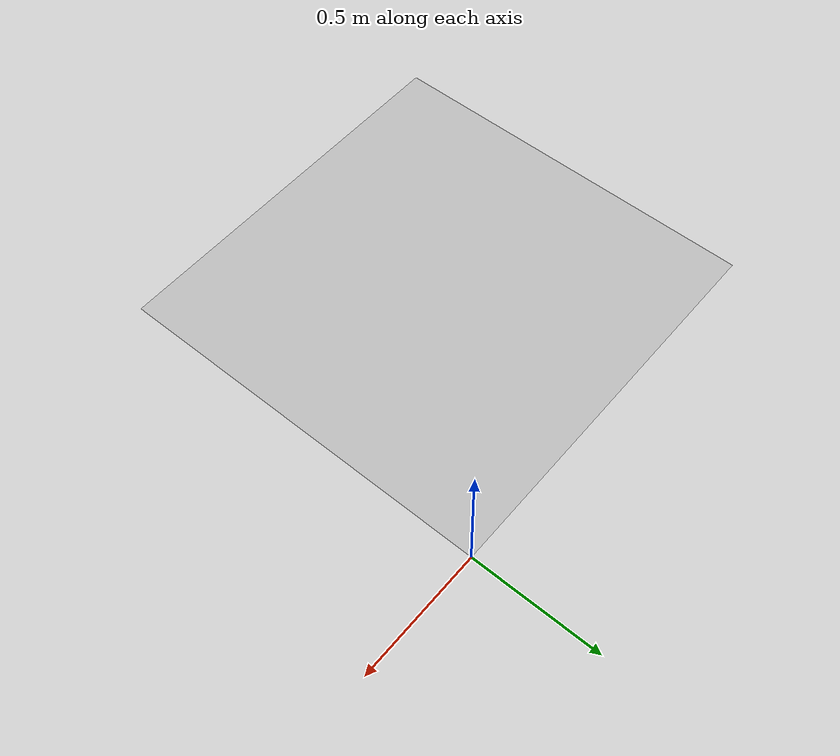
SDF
<?xml version="1.0" ?>
<sdf version="1.5">
  <model name="hallway">
    <static>true</static>
    <link name="link">
      <collision name="collision">
        <geometry>
          <mesh>
            <uri>model://hallway/meshes/hallway.obj</uri>
            <scale>0.01 0.01 0.01</scale>
          </mesh>
        </geometry>
      </collision>
      <visual name="visual">
        <geometry>
          <mesh>
            <uri>model://hallway/meshes/hallway.obj</uri>
            <scale>0.01 0.01 0.01</scale>
          </mesh>
        </geometry>
      </visual>
    </link>
  </model>
</sdf>
